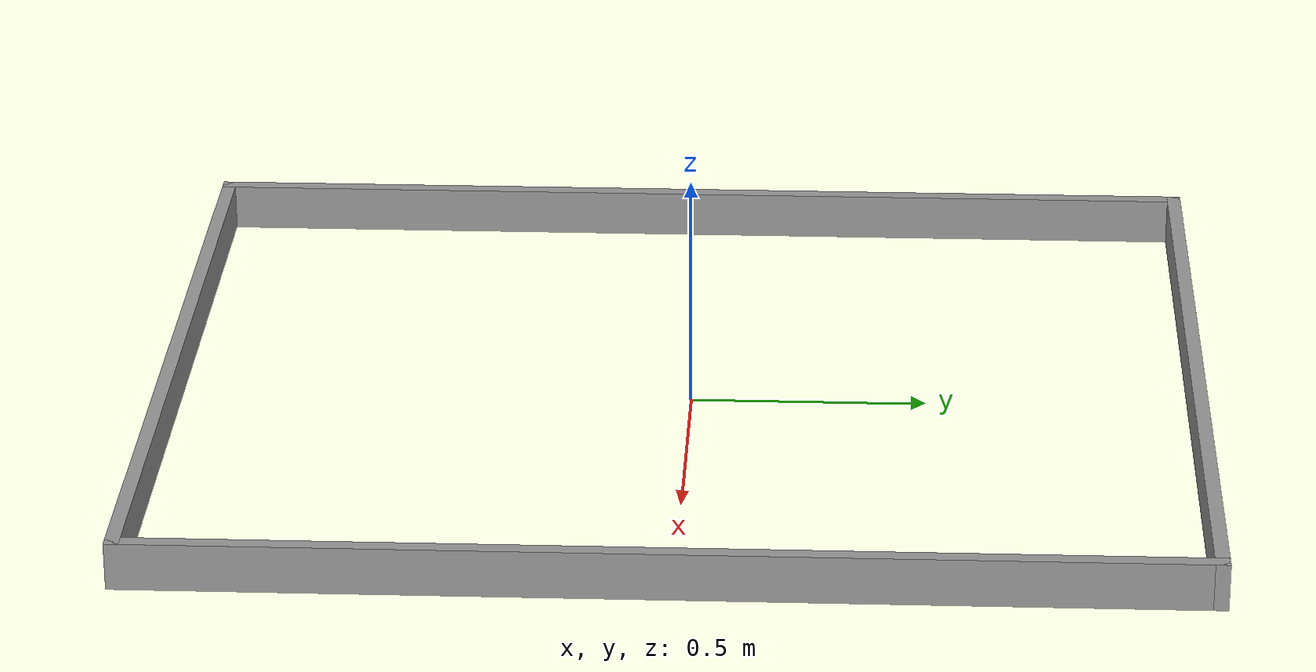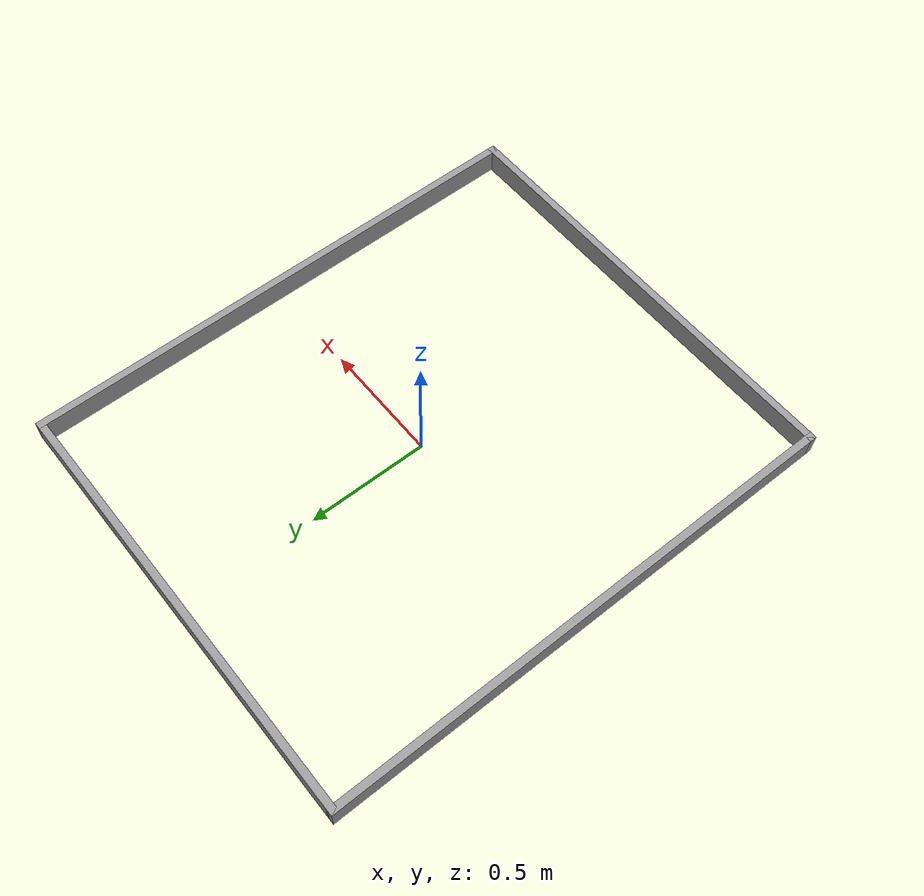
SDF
<?xml version='1.0'?>
<sdf version='1.6'>
  <model name='labArena'>
    <pose frame=''>0 -0.015 0 0 -0 0</pose>
    <link name='Wall_3'>
      <collision name='Wall_3_Collision'>
        <geometry>
          <box>
            <size>1.83 0.03 0.1</size>
          </box>
        </geometry>
        <pose frame=''>0 0 0.05 0 -0 0</pose>
      </collision>
      <visual name='Wall_3_Visual'>
        <pose frame=''>0 0 0.05 0 -0 0</pose>
        <geometry>
          <box>
            <size>1.83 0.03 0.1</size>
          </box>
        </geometry>
        <material>
          <script>
            <uri>file://media/materials/scripts/gazebo.material</uri>
            <name>Gazebo/Grey</name>
          </script>
          <ambient>0 0 0 1</ambient>
        </material>
      </visual>
      <pose frame=''>0 -1.085 0 0 -0 0</pose>
    </link>
    <link name='Wall_5'>
      <collision name='Wall_5_Collision'>
        <geometry>
          <box>
            <size>2.2 0.03 0.1</size>
          </box>
        </geometry>
        <pose frame=''>0 0 0.05 0 -0 0</pose>
      </collision>
      <visual name='Wall_5_Visual'>
        <pose frame=''>0 0 0.05 0 -0 0</pose>
        <geometry>
          <box>
            <size>2.2 0.03 0.1</size>
          </box>
        </geometry>
        <material>
          <script>
            <uri>file://media/materials/scripts/gazebo.material</uri>
            <name>Gazebo/Grey</name>
          </script>
          <ambient>0 0 0 1</ambient>
        </material>
      </visual>
      <pose frame=''>0.9 0 0 0 -0 1.5708</pose>
    </link>
    <link name='Wall_7'>
      <collision name='Wall_7_Collision'>
        <geometry>
          <box>
            <size>2.2 0.03 0.1</size>
          </box>
        </geometry>
        <pose frame=''>0 0 0.05 0 -0 0</pose>
      </collision>
      <visual name='Wall_7_Visual'>
        <pose frame=''>0 0 0.05 0 -0 0</pose>
        <geometry>
          <box>
            <size>2.2 0.03 0.1</size>
          </box>
        </geometry>
        <material>
          <script>
            <uri>file://media/materials/scripts/gazebo.material</uri>
            <name>Gazebo/Grey</name>
          </script>
          <ambient>0 0 0 1</ambient>
        </material>
      </visual>
      <pose frame=''>-0.9 0 0 0 -0 1.5708</pose>
    </link>
    <link name='Wall_9'>
      <collision name='Wall_9_Collision'>
        <geometry>
          <box>
            <size>1.83 0.03 0.1</size>
          </box>
        </geometry>
        <pose frame=''>0 0 0.05 0 -0 0</pose>
      </collision>
      <visual name='Wall_9_Visual'>
        <pose frame=''>0 0 0.05 0 -0 0</pose>
        <geometry>
          <box>
            <size>1.83 0.03 0.1</size>
          </box>
        </geometry>
        <material>
          <script>
            <uri>file://media/materials/scripts/gazebo.material</uri>
            <name>Gazebo/Grey</name>
          </script>
          <ambient>0 0 0 1</ambient>
        </material>
      </visual>
      <pose frame=''>0 1.085 0 0 -0 0</pose>
    </link>
    <static>1</static>
  </model>
</sdf>
